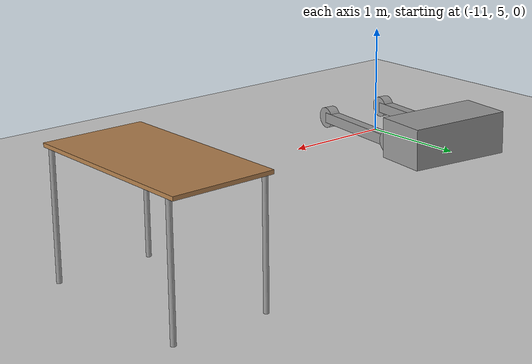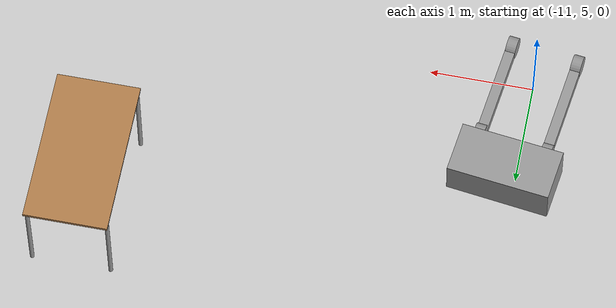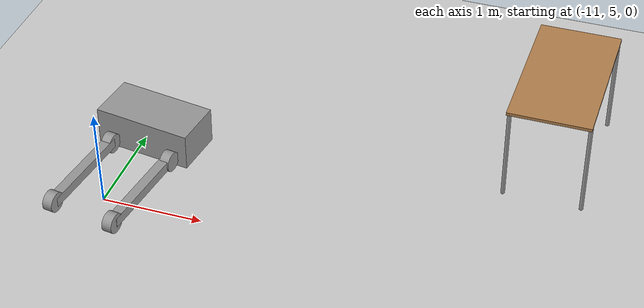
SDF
<sdf version="1.6">
 <world name="default">
  <model name="ground_plane">
   <static>1</static>
   <link name="link">
    <collision name="collision">
     <geometry><plane><normal>0 0 1</normal><size>100 100</size></plane></geometry>
     <surface><friction><ode><mu>100</mu><mu2>50</mu2></ode></friction></surface>
    </collision>
    <visual name="visual">
     <cast_shadows>0</cast_shadows>
     <geometry><plane><normal>0 0 1</normal><size>100 100</size></plane></geometry>
     <material>
      <script><uri>file://media/materials/scripts/gazebo.material</uri><name>Gazebo/Grey</name></script>
     </material>
    </visual>
   </link>
  </model>
  <model name="HumanoidRobot">
   <link name="link_0">
    <pose>-0.000184 -0.328288 -0.269516 0 -0 0</pose>
    <inertial>
     <mass>1</mass>
     <inertia>
      <ixx>0.166667</ixx>
      <ixy>0</ixy>
      <ixz>0</ixz>
      <iyy>0.166667</iyy>
      <iyz>0</iyz>
      <izz>0.166667</izz>
     </inertia>
    </inertial>
    <visual name="visual">
     <geometry><box><size>0.1 0.1 1</size></box></geometry>
     <material>
      <lighting>1</lighting>
      <script><uri>file://media/materials/scripts/gazebo.material</uri><name>Gazebo/Grey</name></script>
      <shader type="pixel"><normal_map>__default__</normal_map></shader>
      <ambient>0.3 0.3 0.3 1</ambient>
      <diffuse>0.7 0.7 0.7 1</diffuse>
      <specular>0.01 0.01 0.01 1</specular>
      <emissive>0 0 0 1</emissive>
     </material>
    </visual>
    <collision name="collision">
     <geometry><box><size>0.1 0.1 1</size></box></geometry>
     <surface>
      <friction>
       <ode><mu>1</mu><mu2>1</mu2><fdir1>0 0 0</fdir1><slip1>0</slip1><slip2>0</slip2></ode>
       <torsional>
        <coefficient>1</coefficient>
        <patch_radius>0</patch_radius>
        <surface_radius>0</surface_radius>
        <use_patch_radius>1</use_patch_radius>
        <ode><slip>0</slip></ode>
       </torsional>
      </friction>
      <bounce><restitution_coefficient>0</restitution_coefficient><threshold>1e+06</threshold></bounce>
      <contact>
       <collide_without_contact>0</collide_without_contact>
       <collide_without_contact_bitmask>1</collide_without_contact_bitmask>
       <collide_bitmask>1</collide_bitmask>
       <ode>
        <soft_cfm>0</soft_cfm>
        <soft_erp>0.2</soft_erp>
        <kp>1e+13</kp>
        <kd>1</kd>
        <max_vel>0.01</max_vel>
        <min_depth>0</min_depth>
       </ode>
       <bullet>
        <split_impulse>1</split_impulse>
        <split_impulse_penetration_threshold>-0.01</split_impulse_penetration_threshold>
        <soft_cfm>0</soft_cfm>
        <soft_erp>0.2</soft_erp>
        <kp>1e+13</kp>
        <kd>1</kd>
       </bullet>
      </contact>
     </surface>
    </collision>
   </link>
   <link name="link_0_clone">
    <pose>0.006018 0.32712 -0.269515 0 -0 0</pose>
    <inertial>
     <mass>1</mass>
     <inertia>
      <ixx>0.166667</ixx>
      <ixy>0</ixy>
      <ixz>0</ixz>
      <iyy>0.166667</iyy>
      <iyz>0</iyz>
      <izz>0.166667</izz>
     </inertia>
    </inertial>
    <visual name="visual">
     <geometry><box><size>0.1 0.1 1</size></box></geometry>
     <material>
      <lighting>1</lighting>
      <script><uri>file://media/materials/scripts/gazebo.material</uri><name>Gazebo/Grey</name></script>
      <shader type="pixel"><normal_map>__default__</normal_map></shader>
      <ambient>0.3 0.3 0.3 1</ambient>
      <diffuse>0.7 0.7 0.7 1</diffuse>
      <specular>0.01 0.01 0.01 1</specular>
      <emissive>0 0 0 1</emissive>
     </material>
    </visual>
    <collision name="collision">
     <geometry><box><size>0.1 0.1 1</size></box></geometry>
     <surface>
      <friction>
       <ode><mu>1</mu><mu2>1</mu2><fdir1>0 0 0</fdir1><slip1>0</slip1><slip2>0</slip2></ode>
       <torsional>
        <coefficient>1</coefficient>
        <patch_radius>0</patch_radius>
        <surface_radius>0</surface_radius>
        <use_patch_radius>1</use_patch_radius>
        <ode><slip>0</slip></ode>
       </torsional>
      </friction>
      <bounce><restitution_coefficient>0</restitution_coefficient><threshold>1e+06</threshold></bounce>
      <contact>
       <collide_without_contact>0</collide_without_contact>
       <collide_without_contact_bitmask>1</collide_without_contact_bitmask>
       <collide_bitmask>1</collide_bitmask>
       <ode>
        <soft_cfm>0</soft_cfm>
        <soft_erp>0.2</soft_erp>
        <kp>1e+13</kp>
        <kd>1</kd>
        <max_vel>0.01</max_vel>
        <min_depth>0</min_depth>
       </ode>
       <bullet>
        <split_impulse>1</split_impulse>
        <split_impulse_penetration_threshold>-0.01</split_impulse_penetration_threshold>
        <soft_cfm>0</soft_cfm>
        <soft_erp>0.2</soft_erp>
        <kp>1e+13</kp>
        <kd>1</kd>
       </bullet>
      </contact>
     </surface>
    </collision>
   </link>
   <link name="link_1">
    <pose>-0.000184 -0.326897 -0.769516 1.57 -0 0</pose>
    <inertial>
     <mass>1</mass>
     <inertia><ixx>0.145833</ixx><ixy>0</ixy><ixz>0</ixz><iyy>0.145833</iyy><iyz>0</iyz><izz>0.125</izz></inertia>
    </inertial>
    <visual name="visual">
     <geometry><cylinder><radius>0.1</radius><length>0.1</length></cylinder></geometry>
     <material>
      <lighting>1</lighting>
      <script><uri>file://media/materials/scripts/gazebo.material</uri><name>Gazebo/Grey</name></script>
      <shader type="pixel"><normal_map>__default__</normal_map></shader>
      <ambient>0.3 0.3 0.3 1</ambient>
      <diffuse>0.7 0.7 0.7 1</diffuse>
      <specular>0.01 0.01 0.01 1</specular>
      <emissive>0 0 0 1</emissive>
     </material>
    </visual>
    <collision name="collision">
     <geometry><cylinder><radius>0.1</radius><length>0.1</length></cylinder></geometry>
     <surface>
      <friction>
       <ode><mu>1</mu><mu2>1</mu2><fdir1>0 0 0</fdir1><slip1>0</slip1><slip2>0</slip2></ode>
       <torsional>
        <coefficient>1</coefficient>
        <patch_radius>0</patch_radius>
        <surface_radius>0</surface_radius>
        <use_patch_radius>1</use_patch_radius>
        <ode><slip>0</slip></ode>
       </torsional>
      </friction>
      <bounce><restitution_coefficient>0</restitution_coefficient><threshold>1e+06</threshold></bounce>
      <contact>
       <collide_without_contact>0</collide_without_contact>
       <collide_without_contact_bitmask>1</collide_without_contact_bitmask>
       <collide_bitmask>1</collide_bitmask>
       <ode>
        <soft_cfm>0</soft_cfm>
        <soft_erp>0.2</soft_erp>
        <kp>1e+13</kp>
        <kd>1</kd>
        <max_vel>0.01</max_vel>
        <min_depth>0</min_depth>
       </ode>
       <bullet>
        <split_impulse>1</split_impulse>
        <split_impulse_penetration_threshold>-0.01</split_impulse_penetration_threshold>
        <soft_cfm>0</soft_cfm>
        <soft_erp>0.2</soft_erp>
        <kp>1e+13</kp>
        <kd>1</kd>
       </bullet>
      </contact>
     </surface>
    </collision>
   </link>
   <link name="link_1_clone">
    <pose>-0.000184 0.327164 -0.769516 1.57 -0 0</pose>
    <inertial>
     <mass>1</mass>
     <inertia><ixx>0.145833</ixx><ixy>0</ixy><ixz>0</ixz><iyy>0.145833</iyy><iyz>0</iyz><izz>0.125</izz></inertia>
    </inertial>
    <visual name="visual">
     <geometry><cylinder><radius>0.1</radius><length>0.1</length></cylinder></geometry>
     <material>
      <lighting>1</lighting>
      <script><uri>file://media/materials/scripts/gazebo.material</uri><name>Gazebo/Grey</name></script>
      <shader type="pixel"><normal_map>__default__</normal_map></shader>
      <ambient>0.3 0.3 0.3 1</ambient>
      <diffuse>0.7 0.7 0.7 1</diffuse>
      <specular>0.01 0.01 0.01 1</specular>
      <emissive>0 0 0 1</emissive>
     </material>
    </visual>
    <collision name="collision">
     <geometry><cylinder><radius>0.1</radius><length>0.1</length></cylinder></geometry>
     <surface>
      <friction>
       <ode><mu>1</mu><mu2>1</mu2><fdir1>0 0 0</fdir1><slip1>0</slip1><slip2>0</slip2></ode>
       <torsional>
        <coefficient>1</coefficient>
        <patch_radius>0</patch_radius>
        <surface_radius>0</surface_radius>
        <use_patch_radius>1</use_patch_radius>
        <ode><slip>0</slip></ode>
       </torsional>
      </friction>
      <bounce><restitution_coefficient>0</restitution_coefficient><threshold>1e+06</threshold></bounce>
      <contact>
       <collide_without_contact>0</collide_without_contact>
       <collide_without_contact_bitmask>1</collide_without_contact_bitmask>
       <collide_bitmask>1</collide_bitmask>
       <ode>
        <soft_cfm>0</soft_cfm>
        <soft_erp>0.2</soft_erp>
        <kp>1e+13</kp>
        <kd>1</kd>
        <max_vel>0.01</max_vel>
        <min_depth>0</min_depth>
       </ode>
       <bullet>
        <split_impulse>1</split_impulse>
        <split_impulse_penetration_threshold>-0.01</split_impulse_penetration_threshold>
        <soft_cfm>0</soft_cfm>
        <soft_erp>0.2</soft_erp>
        <kp>1e+13</kp>
        <kd>1</kd>
       </bullet>
      </contact>
     </surface>
    </collision>
   </link>
   <link name="link_1_clone_0">
    <pose>0.001082 -0.339906 0.231714 1.57 -0 0</pose>
    <inertial>
     <mass>1</mass>
     <inertia><ixx>0.145833</ixx><ixy>0</ixy><ixz>0</ixz><iyy>0.145833</iyy><iyz>0</iyz><izz>0.125</izz></inertia>
    </inertial>
    <visual name="visual">
     <geometry><cylinder><radius>0.1</radius><length>0.1</length></cylinder></geometry>
     <material>
      <lighting>1</lighting>
      <script><uri>file://media/materials/scripts/gazebo.material</uri><name>Gazebo/Grey</name></script>
      <shader type="pixel"><normal_map>__default__</normal_map></shader>
      <ambient>0.3 0.3 0.3 1</ambient>
      <diffuse>0.7 0.7 0.7 1</diffuse>
      <specular>0.01 0.01 0.01 1</specular>
      <emissive>0 0 0 1</emissive>
     </material>
    </visual>
    <collision name="collision">
     <geometry><cylinder><radius>0.1</radius><length>0.1</length></cylinder></geometry>
     <surface>
      <friction>
       <ode><mu>1</mu><mu2>1</mu2><fdir1>0 0 0</fdir1><slip1>0</slip1><slip2>0</slip2></ode>
       <torsional>
        <coefficient>1</coefficient>
        <patch_radius>0</patch_radius>
        <surface_radius>0</surface_radius>
        <use_patch_radius>1</use_patch_radius>
        <ode><slip>0</slip></ode>
       </torsional>
      </friction>
      <bounce><restitution_coefficient>0</restitution_coefficient><threshold>1e+06</threshold></bounce>
      <contact>
       <collide_without_contact>0</collide_without_contact>
       <collide_without_contact_bitmask>1</collide_without_contact_bitmask>
       <collide_bitmask>1</collide_bitmask>
       <ode>
        <soft_cfm>0</soft_cfm>
        <soft_erp>0.2</soft_erp>
        <kp>1e+13</kp>
        <kd>1</kd>
        <max_vel>0.01</max_vel>
        <min_depth>0</min_depth>
       </ode>
       <bullet>
        <split_impulse>1</split_impulse>
        <split_impulse_penetration_threshold>-0.01</split_impulse_penetration_threshold>
        <soft_cfm>0</soft_cfm>
        <soft_erp>0.2</soft_erp>
        <kp>1e+13</kp>
        <kd>1</kd>
       </bullet>
      </contact>
     </surface>
    </collision>
   </link>
   <link name="link_1_clone_0_clone">
    <pose>0.015284 0.327243 0.230484 1.57 -0 0</pose>
    <inertial>
     <mass>1</mass>
     <inertia><ixx>0.145833</ixx><ixy>0</ixy><ixz>0</ixz><iyy>0.145833</iyy><iyz>0</iyz><izz>0.125</izz></inertia>
    </inertial>
    <visual name="visual">
     <geometry><cylinder><radius>0.1</radius><length>0.1</length></cylinder></geometry>
     <material>
      <lighting>1</lighting>
      <script><uri>file://media/materials/scripts/gazebo.material</uri><name>Gazebo/Grey</name></script>
      <shader type="pixel"><normal_map>__default__</normal_map></shader>
      <ambient>0.3 0.3 0.3 1</ambient>
      <diffuse>0.7 0.7 0.7 1</diffuse>
      <specular>0.01 0.01 0.01 1</specular>
      <emissive>0 0 0 1</emissive>
     </material>
    </visual>
    <collision name="collision">
     <geometry><cylinder><radius>0.1</radius><length>0.1</length></cylinder></geometry>
     <surface>
      <friction>
       <ode><mu>1</mu><mu2>1</mu2><fdir1>0 0 0</fdir1><slip1>0</slip1><slip2>0</slip2></ode>
       <torsional>
        <coefficient>1</coefficient>
        <patch_radius>0</patch_radius>
        <surface_radius>0</surface_radius>
        <use_patch_radius>1</use_patch_radius>
        <ode><slip>0</slip></ode>
       </torsional>
      </friction>
      <bounce><restitution_coefficient>0</restitution_coefficient><threshold>1e+06</threshold></bounce>
      <contact>
       <collide_without_contact>0</collide_without_contact>
       <collide_without_contact_bitmask>1</collide_without_contact_bitmask>
       <collide_bitmask>1</collide_bitmask>
       <ode>
        <soft_cfm>0</soft_cfm>
        <soft_erp>0.2</soft_erp>
        <kp>1e+13</kp>
        <kd>1</kd>
        <max_vel>0.01</max_vel>
        <min_depth>0</min_depth>
       </ode>
       <bullet>
        <split_impulse>1</split_impulse>
        <split_impulse_penetration_threshold>-0.01</split_impulse_penetration_threshold>
        <soft_cfm>0</soft_cfm>
        <soft_erp>0.2</soft_erp>
        <kp>1e+13</kp>
        <kd>1</kd>
       </bullet>
      </contact>
     </surface>
    </collision>
   </link>
   <link name="link_3">
    <pose>-0.021834 0.013565 0.565864 0 -0 0</pose>
    <inertial>
     <mass>1</mass>
     <inertia>
      <ixx>0.166667</ixx>
      <ixy>0</ixy>
      <ixz>0</ixz>
      <iyy>0.166667</iyy>
      <iyz>0</iyz>
      <izz>0.166667</izz>
     </inertia>
    </inertial>
    <visual name="visual">
     <geometry><box><size>0.5 1 0.5</size></box></geometry>
     <material>
      <lighting>1</lighting>
      <script><uri>file://media/materials/scripts/gazebo.material</uri><name>Gazebo/Grey</name></script>
      <shader type="pixel"><normal_map>__default__</normal_map></shader>
      <ambient>0.3 0.3 0.3 1</ambient>
      <diffuse>0.7 0.7 0.7 1</diffuse>
      <specular>0.01 0.01 0.01 1</specular>
      <emissive>0 0 0 1</emissive>
     </material>
    </visual>
    <collision name="collision">
     <geometry><box><size>0.5 1 0.5</size></box></geometry>
     <surface>
      <friction>
       <ode><mu>1</mu><mu2>1</mu2><fdir1>0 0 0</fdir1><slip1>0</slip1><slip2>0</slip2></ode>
       <torsional>
        <coefficient>1</coefficient>
        <patch_radius>0</patch_radius>
        <surface_radius>0</surface_radius>
        <use_patch_radius>1</use_patch_radius>
        <ode><slip>0</slip></ode>
       </torsional>
      </friction>
      <bounce><restitution_coefficient>0</restitution_coefficient><threshold>1e+06</threshold></bounce>
      <contact>
       <collide_without_contact>0</collide_without_contact>
       <collide_without_contact_bitmask>1</collide_without_contact_bitmask>
       <collide_bitmask>1</collide_bitmask>
       <ode>
        <soft_cfm>0</soft_cfm>
        <soft_erp>0.2</soft_erp>
        <kp>1e+13</kp>
        <kd>1</kd>
        <max_vel>0.01</max_vel>
        <min_depth>0</min_depth>
       </ode>
       <bullet>
        <split_impulse>1</split_impulse>
        <split_impulse_penetration_threshold>-0.01</split_impulse_penetration_threshold>
        <soft_cfm>0</soft_cfm>
        <soft_erp>0.2</soft_erp>
        <kp>1e+13</kp>
        <kd>1</kd>
       </bullet>
      </contact>
     </surface>
    </collision>
   </link>
   <joint name="link_0_JOINT_0" type="revolute">
    <parent>link_0</parent>
    <child>link_1</child>
    <axis>
     <xyz>0 0 1</xyz>
     <use_parent_model_frame>0</use_parent_model_frame>
     <limit>
      <lower>-1.79769e+308</lower>
      <upper>1.79769e+308</upper>
      <effort>-1</effort>
      <velocity>-1</velocity>
     </limit>
     <dynamics>
      <spring_reference>0</spring_reference>
      <spring_stiffness>0</spring_stiffness>
      <damping>0</damping>
      <friction>0</friction>
     </dynamics>
    </axis>
    <physics>
     <ode><limit><cfm>0</cfm><erp>0.2</erp></limit><suspension><cfm>0</cfm><erp>0.2</erp></suspension></ode>
    </physics>
   </joint>
   <joint name="link_0_clone_JOINT_1" type="revolute">
    <parent>link_0_clone</parent>
    <child>link_1_clone</child>
    <axis>
     <xyz>0 0 1</xyz>
     <use_parent_model_frame>0</use_parent_model_frame>
     <limit>
      <lower>-1.79769e+308</lower>
      <upper>1.79769e+308</upper>
      <effort>-1</effort>
      <velocity>-1</velocity>
     </limit>
     <dynamics>
      <spring_reference>0</spring_reference>
      <spring_stiffness>0</spring_stiffness>
      <damping>0</damping>
      <friction>0</friction>
     </dynamics>
    </axis>
    <physics>
     <ode><limit><cfm>0</cfm><erp>0.2</erp></limit><suspension><cfm>0</cfm><erp>0.2</erp></suspension></ode>
    </physics>
   </joint>
   <joint name="link_1_clone_0_JOINT_6" type="fixed">
    <parent>link_1_clone_0</parent>
    <child>link_0</child>
    <physics>
     <ode><limit><cfm>0</cfm><erp>0.2</erp></limit><suspension><cfm>0</cfm><erp>0.2</erp></suspension></ode>
    </physics>
   </joint>
   <joint name="link_1_clone_0_clone_JOINT_7" type="fixed">
    <parent>link_1_clone_0_clone</parent>
    <child>link_0_clone</child>
    <physics>
     <ode><limit><cfm>0</cfm><erp>0.2</erp></limit><suspension><cfm>0</cfm><erp>0.2</erp></suspension></ode>
    </physics>
   </joint>
   <joint name="link_3_JOINT_8" type="revolute">
    <parent>link_3</parent>
    <child>link_1_clone_0</child>
    <axis>
     <xyz>0 0 1</xyz>
     <use_parent_model_frame>0</use_parent_model_frame>
     <limit>
      <lower>-1.79769e+308</lower>
      <upper>1.79769e+308</upper>
      <effort>-1</effort>
      <velocity>-1</velocity>
     </limit>
     <dynamics>
      <spring_reference>0</spring_reference>
      <spring_stiffness>0</spring_stiffness>
      <damping>0</damping>
      <friction>0</friction>
     </dynamics>
    </axis>
    <physics>
     <ode><limit><cfm>0</cfm><erp>0.2</erp></limit><suspension><cfm>0</cfm><erp>0.2</erp></suspension></ode>
    </physics>
   </joint>
   <joint name="link_3_JOINT_9" type="revolute">
    <parent>link_3</parent>
    <child>link_1_clone_0_clone</child>
    <axis>
     <xyz>0 0 1</xyz>
     <use_parent_model_frame>0</use_parent_model_frame>
     <limit>
      <lower>-1.79769e+308</lower>
      <upper>1.79769e+308</upper>
      <effort>-1</effort>
      <velocity>-1</velocity>
     </limit>
     <dynamics>
      <spring_reference>0</spring_reference>
      <spring_stiffness>0</spring_stiffness>
      <damping>0</damping>
      <friction>0</friction>
     </dynamics>
    </axis>
    <physics>
     <ode><limit><cfm>0</cfm><erp>0.2</erp></limit><suspension><cfm>0</cfm><erp>0.2</erp></suspension></ode>
    </physics>
   </joint>
   <static>0</static>
   <pose>-10.9544 5.43766 0.106821 1.47672 1.55512 2.91311</pose>
  </model>
  <model name="table_2">
   <static>1</static>
   <link name="link">
    <collision name="surface">
     <pose>0 0 1 0 -0 0</pose>
     <geometry><box><size>1.5 0.8 0.03</size></box></geometry>
     <surface><friction><ode><mu>0.6</mu><mu2>0.6</mu2></ode></friction></surface>
    </collision>
    <visual name="visual1">
     <pose>0 0 1 0 -0 0</pose>
     <geometry><box><size>1.5 0.8 0.03</size></box></geometry>
     <material>
      <script><uri>file://media/materials/scripts/gazebo.material</uri><name>Gazebo/Wood</name></script>
     </material>
    </visual>
    <collision name="front_left_leg">
     <pose>0.68 0.38 0.5 0 -0 0</pose>
     <geometry><cylinder><radius>0.02</radius><length>1</length></cylinder></geometry>
    </collision>
    <visual name="front_left_leg">
     <pose>0.68 0.38 0.5 0 -0 0</pose>
     <geometry><cylinder><radius>0.02</radius><length>1</length></cylinder></geometry>
     <material>
      <script><uri>file://media/materials/scripts/gazebo.material</uri><name>Gazebo/Grey</name></script>
     </material>
    </visual>
    <collision name="front_right_leg">
     <pose>0.68 -0.38 0.5 0 -0 0</pose>
     <geometry><cylinder><radius>0.02</radius><length>1</length></cylinder></geometry>
    </collision>
    <visual name="front_right_leg">
     <pose>0.68 -0.38 0.5 0 -0 0</pose>
     <geometry><cylinder><radius>0.02</radius><length>1</length></cylinder></geometry>
     <material>
      <script><uri>file://media/materials/scripts/gazebo.material</uri><name>Gazebo/Grey</name></script>
     </material>
    </visual>
    <collision name="back_right_leg">
     <pose>-0.68 -0.38 0.5 0 -0 0</pose>
     <geometry><cylinder><radius>0.02</radius><length>1</length></cylinder></geometry>
    </collision>
    <visual name="back_right_leg">
     <pose>-0.68 -0.38 0.5 0 -0 0</pose>
     <geometry><cylinder><radius>0.02</radius><length>1</length></cylinder></geometry>
     <material>
      <script><uri>file://media/materials/scripts/gazebo.material</uri><name>Gazebo/Grey</name></script>
     </material>
    </visual>
    <collision name="back_left_leg">
     <pose>-0.68 0.38 0.5 0 -0 0</pose>
     <geometry><cylinder><radius>0.02</radius><length>1</length></cylinder></geometry>
    </collision>
    <visual name="back_left_leg">
     <pose>-0.68 0.38 0.5 0 -0 0</pose>
     <geometry><cylinder><radius>0.02</radius><length>1</length></cylinder></geometry>
     <material>
      <script><uri>file://media/materials/scripts/gazebo.material</uri><name>Gazebo/Grey</name></script>
     </material>
    </visual>
   </link>
   <pose>-7.03113 6.97193 0 0 -0 1.57034</pose>
  </model>
 </world>
</sdf>
